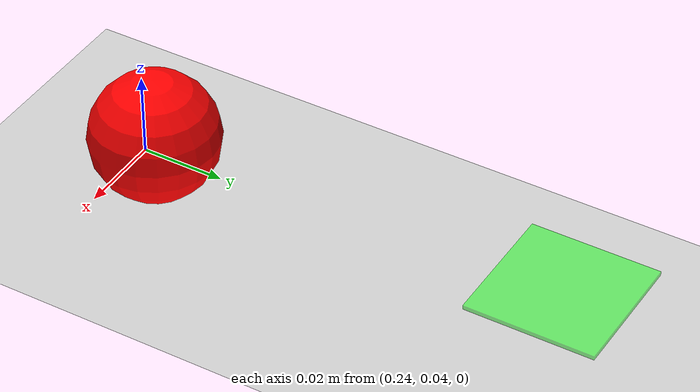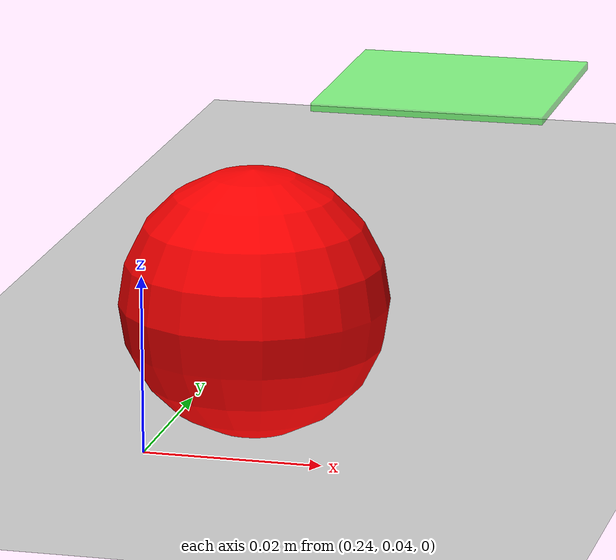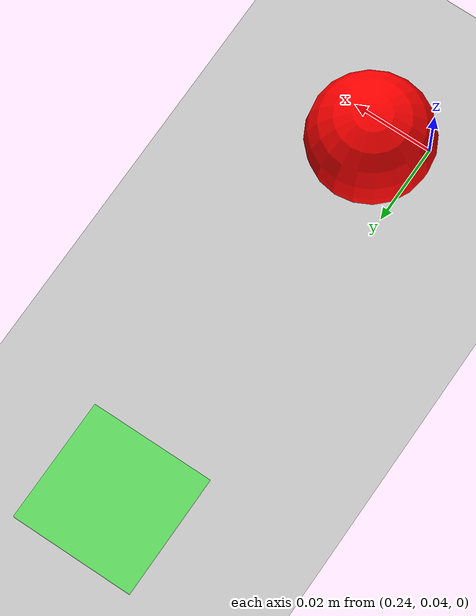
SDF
<?xml version="1.0"?>
<sdf version="1.6">
  <world name="pick_place">
    <include>
      <uri>model://sun</uri>
    </include>

    <include>
      <uri>model://ground_plane</uri>
    </include>

    <physics type="ode">
      <real_time_update_rate>1000</real_time_update_rate>
      <max_step_size>0.001</max_step_size>
      <ode>
        <solver>
          <type>quick</type>
          <iters>200</iters>
          <precon_iters>0</precon_iters>
          <sor>1.4</sor>
        </solver>
        <constraints>
          <cfm>0.00001</cfm>
          <erp>0.2</erp>
          <contact_max_correcting_vel>100</contact_max_correcting_vel>
          <contact_surface_layer>0.001</contact_surface_layer>
        </constraints>
      </ode>
    </physics>

    <model name="sphere">
      <pose>0.25 0.05 0.015 0 0 0</pose>
      <link name="link">
        <collision name="collision">
          <geometry>
            <sphere>
              <radius>0.01</radius>
            </sphere>
          </geometry>
          <surface>
            <contact>
              <ode>
                <kp>2e8</kp>
                <kd>1e5</kd>
                <max_vel>0.3</max_vel>
              </ode>
            </contact>
            <friction>
              <ode>
                <mu>1.2</mu>
                <mu2>1.2</mu2>
                <slip1>0.15</slip1>
                <slip2>0.15</slip2>
              </ode>
            </friction>
          </surface>
        </collision>
        <visual name="visual">
          <geometry>
            <sphere>
              <radius>0.015</radius>
            </sphere>
          </geometry>
          <material>
            <diffuse>1 0 0 1</diffuse>
          </material>
        </visual>
        <inertial>
          <mass>0.04</mass>
          <inertia>
            <ixx>2.0e-5</ixx>
            <iyy>2.0e-5</iyy>
            <izz>2.0e-5</izz>
          </inertia>
        </inertial>
      </link>
    </model>

    <!-- Visual place marker -->
    <model name="place_marker">
      <pose>0.25 0.15 0.015 0 0 0</pose>
      <link name="link">
        <visual name="visual">
          <geometry>
            <box>
              <size>0.03 0.03 0.001</size>
            </box>
          </geometry>
          <material>
            <diffuse>0 1 0 0.5</diffuse>
          </material>
        </visual>
      </link>
    </model>
  </world>
</sdf>
